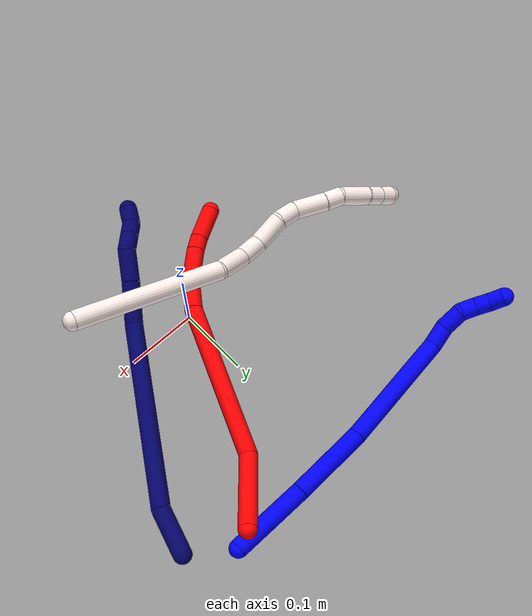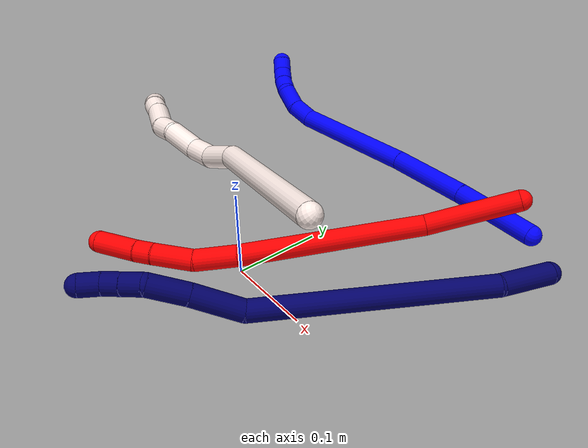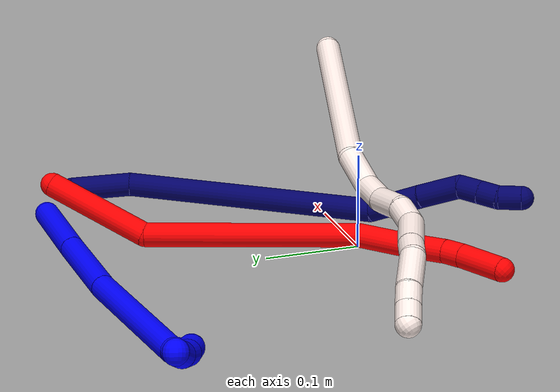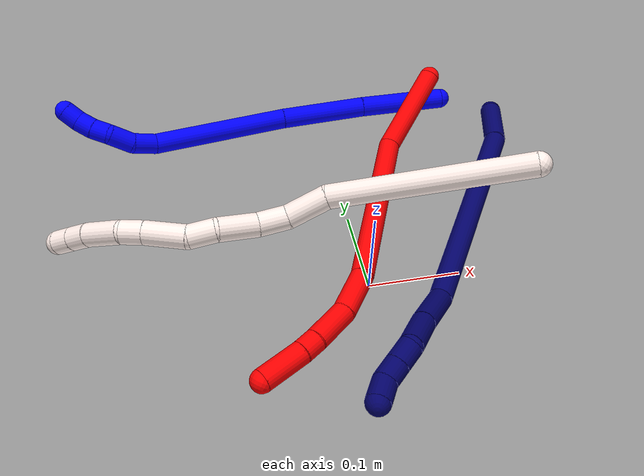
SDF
<sdf version="1.7">
 <world name="default">
  <model name="photoneo_s_sensor">
   <static>1</static>
   <pose>0 0 2 1.57079 1.57079 3.14159</pose>
   <link name="link">
    <inertial><mass>0.1</mass></inertial>
    <sensor name="sensor" type="depth">
     <update_rate>30</update_rate>
     <camera>
      <horizontal_fov>1.22</horizontal_fov>
      <image><width>1920</width><height>1200</height><format>B8G8R8</format></image>
      <clip><near>0.1</near><far>4</far></clip>
      <depth_camera><output>points</output></depth_camera>
     </camera>
     <plugin name="camera_plugin" filename="libgazebo_ros_depth_camera.so">
      <baseline>0.2</baseline>
      <alwaysOn>1</alwaysOn>
      <updateRate>0.0</updateRate>
      <cameraName>camera_ir</cameraName>
      <imageTopicName>/camera/color/image_raw</imageTopicName>
      <cameraInfoTopicName>/camera/color/camera_info</cameraInfoTopicName>
      <depthImageTopicName>/camera/depth/image_raw</depthImageTopicName>
      <depthImageCameraInfoTopicName>/camera/depth/camera_info</depthImageCameraInfoTopicName>
      <pointCloudTopicName>/camera/depth/points</pointCloudTopicName>
      <frameName>fr_optical</frameName>
      <pointCloudCutoff>0.1</pointCloudCutoff>
      <pointCloudCutoffMax>2.0</pointCloudCutoffMax>
      <distortionK1>0</distortionK1>
      <distortionK2>0</distortionK2>
      <distortionK3>0</distortionK3>
      <distortionT1>0</distortionT1>
      <distortionT2>0</distortionT2>
      <CxPrime>0</CxPrime>
      <Cx>0</Cx>
      <Cy>0</Cy>
      <focalLength>0</focalLength>
      <hackBaseline>0</hackBaseline>
     </plugin>
    </sensor>
   </link>
  </model>
  <model name="bin">
   <static>1</static>
   <link name="bottom">
    <collision name="collision-bottom">
     <pose>0 0 -0.01 0 -0 0</pose>
     <geometry><box><size>0.8 0.6 0.02</size></box></geometry>
     <surface>
      <friction><ode><mu>100</mu><mu2>100</mu2></ode></friction>
      <contact><collide_bitmask>65535</collide_bitmask></contact>
     </surface>
    </collision>
   </link>
   <link name="west_wall">
    <collision name="collision-west_wall">
     <pose>-0.41 0 0.1 0 -0 0</pose>
     <geometry><box><size>0.02 0.6 0.2</size></box></geometry>
     <surface>
      <friction><ode><mu>100</mu><mu2>100</mu2></ode></friction>
      <contact><collide_bitmask>65535</collide_bitmask></contact>
     </surface>
    </collision>
   </link>
   <link name="east_wall">
    <collision name="collision-east_wall">
     <pose>0.41 0 0.1 0 -0 0</pose>
     <geometry><box><size>0.02 0.6 0.2</size></box></geometry>
     <surface>
      <friction><ode><mu>100</mu><mu2>100</mu2></ode></friction>
      <contact><collide_bitmask>65535</collide_bitmask></contact>
     </surface>
    </collision>
   </link>
   <link name="south_wall">
    <collision name="collision-south_wall">
     <pose>0 -0.31 0.1 0 -0 0</pose>
     <geometry><box><size>0.8 0.02 0.2</size></box></geometry>
     <surface>
      <friction><ode><mu>100</mu><mu2>100</mu2></ode></friction>
      <contact><collide_bitmask>65535</collide_bitmask></contact>
     </surface>
    </collision>
   </link>
   <link name="north_wall">
    <collision name="collision-north_wall">
     <pose>0 0.31 0.1 0 -0 0</pose>
     <geometry><box><size>0.8 0.02 0.2</size></box></geometry>
     <surface>
      <friction><ode><mu>100</mu><mu2>100</mu2></ode></friction>
      <contact><collide_bitmask>65535</collide_bitmask></contact>
     </surface>
    </collision>
   </link>
  </model>
  <model name="1">
   <static>0</static>
   <link name="1">
    <collision name="collision-cylinder-e_1_1_4">
     <pose>-0.044641 -0.022448 0.01834 0.885773 -0.994871 -0.504125</pose>
     <geometry><cylinder><radius>0.0125</radius><length>0.106454</length></cylinder></geometry>
     <surface>
      <friction><ode><mu>1.16</mu><mu2>1.16</mu2><slip1>0</slip1><slip2>0</slip2></ode></friction>
      <contact><ode><kp>1e+06</kp><kd>1</kd><max_vel>0</max_vel><min_depth>0.001</min_depth></ode></contact>
     </surface>
    </collision>
    <visual name="visual-cylinder-e_1_1_4">
     <pose>-0.044641 -0.022448 0.01834 0.885773 -0.994871 -0.504125</pose>
     <geometry><cylinder><radius>0.0125</radius><length>0.106454</length></cylinder></geometry>
     <material><ambient>0 0 1 1</ambient></material>
    </visual>
    <collision name="collision-cylinder-e_2_4_5">
     <pose>-0.133958 -0.065335 0.055694 0.821518 -1.01234 -0.4738</pose>
     <geometry><cylinder><radius>0.0125</radius><length>0.105361</length></cylinder></geometry>
     <surface>
      <friction><ode><mu>1.16</mu><mu2>1.16</mu2><slip1>0</slip1><slip2>0</slip2></ode></friction>
      <contact><ode><kp>1e+06</kp><kd>1</kd><max_vel>0</max_vel><min_depth>0.001</min_depth></ode></contact>
     </surface>
    </collision>
    <visual name="visual-cylinder-e_2_4_5">
     <pose>-0.133958 -0.065335 0.055694 0.821518 -1.01234 -0.4738</pose>
     <geometry><cylinder><radius>0.0125</radius><length>0.105361</length></cylinder></geometry>
     <material><ambient>0 0 1 1</ambient></material>
    </visual>
    <collision name="collision-cylinder-e_3_5_6">
     <pose>-0.252863 -0.111793 0.102845 0.746294 -1.09418 -0.468172</pose>
     <geometry><cylinder><radius>0.0125</radius><length>0.167076</length></cylinder></geometry>
     <surface>
      <friction><ode><mu>1.16</mu><mu2>1.16</mu2><slip1>0</slip1><slip2>0</slip2></ode></friction>
      <contact><ode><kp>1e+06</kp><kd>1</kd><max_vel>0</max_vel><min_depth>0.001</min_depth></ode></contact>
     </surface>
    </collision>
    <visual name="visual-cylinder-e_3_5_6">
     <pose>-0.252863 -0.111793 0.102845 0.746294 -1.09418 -0.468172</pose>
     <geometry><cylinder><radius>0.0125</radius><length>0.167076</length></cylinder></geometry>
     <material><ambient>0 0 1 1</ambient></material>
    </visual>
    <collision name="collision-cylinder-e_4_6_7">
     <pose>-0.341156 -0.142477 0.130909 1.58685 -1.25056 -1.26584</pose>
     <geometry><cylinder><radius>0.0125</radius><length>0.029636</length></cylinder></geometry>
     <surface>
      <friction><ode><mu>1.16</mu><mu2>1.16</mu2><slip1>0</slip1><slip2>0</slip2></ode></friction>
      <contact><ode><kp>1e+06</kp><kd>1</kd><max_vel>0</max_vel><min_depth>0.001</min_depth></ode></contact>
     </surface>
    </collision>
    <visual name="visual-cylinder-e_4_6_7">
     <pose>-0.341156 -0.142477 0.130909 1.58685 -1.25056 -1.26584</pose>
     <geometry><cylinder><radius>0.0125</radius><length>0.029636</length></cylinder></geometry>
     <material><ambient>0 0 1 1</ambient></material>
    </visual>
    <collision name="collision-cylinder-e_5_7_8">
     <pose>-0.367208 -0.155899 0.128322 1.8502 -0.920935 -1.16445</pose>
     <geometry><cylinder><radius>0.0125</radius><length>0.030114</length></cylinder></geometry>
     <surface>
      <friction><ode><mu>1.16</mu><mu2>1.16</mu2><slip1>0</slip1><slip2>0</slip2></ode></friction>
      <contact><ode><kp>1e+06</kp><kd>1</kd><max_vel>0</max_vel><min_depth>0.001</min_depth></ode></contact>
     </surface>
    </collision>
    <visual name="visual-cylinder-e_5_7_8">
     <pose>-0.367208 -0.155899 0.128322 1.8502 -0.920935 -1.16445</pose>
     <geometry><cylinder><radius>0.0125</radius><length>0.030114</length></cylinder></geometry>
     <material><ambient>0 0 1 1</ambient></material>
    </visual>
    <collision name="collision-cylinder-e_6_8_9">
     <pose>-0.385265 -0.172947 0.127696 1.34702 -0.619885 -0.500421</pose>
     <geometry><cylinder><radius>0.0125</radius><length>0.020893</length></cylinder></geometry>
     <surface>
      <friction><ode><mu>1.16</mu><mu2>1.16</mu2><slip1>0</slip1><slip2>0</slip2></ode></friction>
      <contact><ode><kp>1e+06</kp><kd>1</kd><max_vel>0</max_vel><min_depth>0.001</min_depth></ode></contact>
     </surface>
    </collision>
    <visual name="visual-cylinder-e_6_8_9">
     <pose>-0.385265 -0.172947 0.127696 1.34702 -0.619885 -0.500421</pose>
     <geometry><cylinder><radius>0.0125</radius><length>0.020893</length></cylinder></geometry>
     <material><ambient>0 0 1 1</ambient></material>
    </visual>
    <collision name="collision-cylinder-e_7_9_10">
     <pose>-0.396492 -0.190038 0.130012 1.52209 -0.529621 -0.505515</pose>
     <geometry><cylinder><radius>0.0125</radius><length>0.02042</length></cylinder></geometry>
     <surface>
      <friction><ode><mu>1.16</mu><mu2>1.16</mu2><slip1>0</slip1><slip2>0</slip2></ode></friction>
      <contact><ode><kp>1e+06</kp><kd>1</kd><max_vel>0</max_vel><min_depth>0.001</min_depth></ode></contact>
     </surface>
    </collision>
    <visual name="visual-cylinder-e_7_9_10">
     <pose>-0.396492 -0.190038 0.130012 1.52209 -0.529621 -0.505515</pose>
     <geometry><cylinder><radius>0.0125</radius><length>0.02042</length></cylinder></geometry>
     <material><ambient>0 0 1 1</ambient></material>
    </visual>
    <collision name="collision-cylinder-e_8_10_2">
     <pose>-0.406578 -0.207405 0.12877 1.76343 -0.514064 -0.617717</pose>
     <geometry><cylinder><radius>0.0125</radius><length>0.020047</length></cylinder></geometry>
     <surface>
      <friction><ode><mu>1.16</mu><mu2>1.16</mu2><slip1>0</slip1><slip2>0</slip2></ode></friction>
      <contact><ode><kp>1e+06</kp><kd>1</kd><max_vel>0</max_vel><min_depth>0.001</min_depth></ode></contact>
     </surface>
    </collision>
    <visual name="visual-cylinder-e_8_10_2">
     <pose>-0.406578 -0.207405 0.12877 1.76343 -0.514064 -0.617717</pose>
     <geometry><cylinder><radius>0.0125</radius><length>0.020047</length></cylinder></geometry>
     <material><ambient>0 0 1 1</ambient></material>
    </visual>
    <collision name="collision-sphere-2">
     <pose>-0.411507 -0.215972 0.127099 0 -0 0</pose>
     <geometry><sphere><radius>0.0125</radius></sphere></geometry>
     <surface>
      <friction><ode><mu>1.16</mu><mu2>1.16</mu2><slip1>0</slip1><slip2>0</slip2></ode></friction>
      <contact><ode><kp>1e+06</kp><kd>1</kd><max_vel>0</max_vel><min_depth>0.001</min_depth></ode></contact>
     </surface>
    </collision>
    <visual name="visual-sphere-2">
     <pose>-0.411507 -0.215972 0.127099 0 -0 0</pose>
     <geometry><sphere><radius>0.0125</radius></sphere></geometry>
     <material><ambient>0 0 1 1</ambient></material>
    </visual>
    <collision name="collision-sphere-10">
     <pose>-0.40165 -0.198839 0.130441 0 -0 0</pose>
     <geometry><sphere><radius>0.0125</radius></sphere></geometry>
     <surface>
      <friction><ode><mu>1.16</mu><mu2>1.16</mu2><slip1>0</slip1><slip2>0</slip2></ode></friction>
      <contact><ode><kp>1e+06</kp><kd>1</kd><max_vel>0</max_vel><min_depth>0.001</min_depth></ode></contact>
     </surface>
    </collision>
    <visual name="visual-sphere-10">
     <pose>-0.40165 -0.198839 0.130441 0 -0 0</pose>
     <geometry><sphere><radius>0.0125</radius></sphere></geometry>
     <material><ambient>0 0 1 1</ambient></material>
    </visual>
    <collision name="collision-sphere-9">
     <pose>-0.391334 -0.181238 0.129583 0 -0 0</pose>
     <geometry><sphere><radius>0.0125</radius></sphere></geometry>
     <surface>
      <friction><ode><mu>1.16</mu><mu2>1.16</mu2><slip1>0</slip1><slip2>0</slip2></ode></friction>
      <contact><ode><kp>1e+06</kp><kd>1</kd><max_vel>0</max_vel><min_depth>0.001</min_depth></ode></contact>
     </surface>
    </collision>
    <visual name="visual-sphere-9">
     <pose>-0.391334 -0.181238 0.129583 0 -0 0</pose>
     <geometry><sphere><radius>0.0125</radius></sphere></geometry>
     <material><ambient>0 0 1 1</ambient></material>
    </visual>
    <collision name="collision-sphere-4">
     <pose>-0.089282 -0.044897 0.036681 0 -0 0</pose>
     <geometry><sphere><radius>0.0125</radius></sphere></geometry>
     <surface>
      <friction><ode><mu>1.16</mu><mu2>1.16</mu2><slip1>0</slip1><slip2>0</slip2></ode></friction>
      <contact><ode><kp>1e+06</kp><kd>1</kd><max_vel>0</max_vel><min_depth>0.001</min_depth></ode></contact>
     </surface>
    </collision>
    <visual name="visual-sphere-4">
     <pose>-0.089282 -0.044897 0.036681 0 -0 0</pose>
     <geometry><sphere><radius>0.0125</radius></sphere></geometry>
     <material><ambient>0 0 1 1</ambient></material>
    </visual>
    <collision name="collision-sphere-1">
     <geometry><sphere><radius>0.0125</radius></sphere></geometry>
     <surface>
      <friction><ode><mu>1.16</mu><mu2>1.16</mu2><slip1>0</slip1><slip2>0</slip2></ode></friction>
      <contact><ode><kp>1e+06</kp><kd>1</kd><max_vel>0</max_vel><min_depth>0.001</min_depth></ode></contact>
     </surface>
    </collision>
    <visual name="visual-sphere-1">
     <geometry><sphere><radius>0.0125</radius></sphere></geometry>
     <material><ambient>0 0 1 1</ambient></material>
    </visual>
    <collision name="collision-sphere-8">
     <pose>-0.379196 -0.164656 0.125809 0 -0 0</pose>
     <geometry><sphere><radius>0.0125</radius></sphere></geometry>
     <surface>
      <friction><ode><mu>1.16</mu><mu2>1.16</mu2><slip1>0</slip1><slip2>0</slip2></ode></friction>
      <contact><ode><kp>1e+06</kp><kd>1</kd><max_vel>0</max_vel><min_depth>0.001</min_depth></ode></contact>
     </surface>
    </collision>
    <visual name="visual-sphere-8">
     <pose>-0.379196 -0.164656 0.125809 0 -0 0</pose>
     <geometry><sphere><radius>0.0125</radius></sphere></geometry>
     <material><ambient>0 0 1 1</ambient></material>
    </visual>
    <collision name="collision-sphere-5">
     <pose>-0.178635 -0.085773 0.074706 0 -0 0</pose>
     <geometry><sphere><radius>0.0125</radius></sphere></geometry>
     <surface>
      <friction><ode><mu>1.16</mu><mu2>1.16</mu2><slip1>0</slip1><slip2>0</slip2></ode></friction>
      <contact><ode><kp>1e+06</kp><kd>1</kd><max_vel>0</max_vel><min_depth>0.001</min_depth></ode></contact>
     </surface>
    </collision>
    <visual name="visual-sphere-5">
     <pose>-0.178635 -0.085773 0.074706 0 -0 0</pose>
     <geometry><sphere><radius>0.0125</radius></sphere></geometry>
     <material><ambient>0 0 1 1</ambient></material>
    </visual>
    <collision name="collision-sphere-6">
     <pose>-0.327091 -0.137813 0.130984 0 -0 0</pose>
     <geometry><sphere><radius>0.0125</radius></sphere></geometry>
     <surface>
      <friction><ode><mu>1.16</mu><mu2>1.16</mu2><slip1>0</slip1><slip2>0</slip2></ode></friction>
      <contact><ode><kp>1e+06</kp><kd>1</kd><max_vel>0</max_vel><min_depth>0.001</min_depth></ode></contact>
     </surface>
    </collision>
    <visual name="visual-sphere-6">
     <pose>-0.327091 -0.137813 0.130984 0 -0 0</pose>
     <geometry><sphere><radius>0.0125</radius></sphere></geometry>
     <material><ambient>0 0 1 1</ambient></material>
    </visual>
    <collision name="collision-sphere-7">
     <pose>-0.35522 -0.147141 0.130834 0 -0 0</pose>
     <geometry><sphere><radius>0.0125</radius></sphere></geometry>
     <surface>
      <friction><ode><mu>1.16</mu><mu2>1.16</mu2><slip1>0</slip1><slip2>0</slip2></ode></friction>
      <contact><ode><kp>1e+06</kp><kd>1</kd><max_vel>0</max_vel><min_depth>0.001</min_depth></ode></contact>
     </surface>
    </collision>
    <visual name="visual-sphere-7">
     <pose>-0.35522 -0.147141 0.130834 0 -0 0</pose>
     <geometry><sphere><radius>0.0125</radius></sphere></geometry>
     <material><ambient>0 0 1 1</ambient></material>
    </visual>
    <inertial>
     <pose>-0.213156 -0.097041 0.081303 0 -0 0</pose>
     <mass>0.5</mass>
     <inertia>
      <ixx>9.3e-05</ixx>
      <ixy>0</ixy>
      <ixz>0</ixz>
      <iyy>0.000398</iyy>
      <iyz>0</iyz>
      <izz>0.000757</izz>
     </inertia>
    </inertial>
   </link>
   <pose>0.167372 0.287567 0.011493 -2.86855 0.266804 0.527613</pose>
  </model>
  <model name="2">
   <static>0</static>
   <link name="2">
    <collision name="collision-cylinder-e_1_1_4">
     <pose>-0.013054 -0.012299 -0.053739 2.91661 -0.232515 -1.60399</pose>
     <geometry><cylinder><radius>0.0125</radius><length>0.113305</length></cylinder></geometry>
     <surface>
      <friction><ode><mu>1.16</mu><mu2>1.16</mu2><slip1>0</slip1><slip2>0</slip2></ode></friction>
      <contact><ode><kp>1e+06</kp><kd>1</kd><max_vel>0</max_vel><min_depth>0.001</min_depth></ode></contact>
     </surface>
    </collision>
    <visual name="visual-cylinder-e_1_1_4">
     <pose>-0.013054 -0.012299 -0.053739 2.91661 -0.232515 -1.60399</pose>
     <geometry><cylinder><radius>0.0125</radius><length>0.113305</length></cylinder></geometry>
     <material><ambient>1 0 0 1</ambient></material>
    </visual>
    <collision name="collision-cylinder-e_2_4_5">
     <pose>-0.048247 -0.097992 -0.187482 2.39925 -0.201154 -0.507403</pose>
     <geometry><cylinder><radius>0.0125</radius><length>0.221609</length></cylinder></geometry>
     <surface>
      <friction><ode><mu>1.16</mu><mu2>1.16</mu2><slip1>0</slip1><slip2>0</slip2></ode></friction>
      <contact><ode><kp>1e+06</kp><kd>1</kd><max_vel>0</max_vel><min_depth>0.001</min_depth></ode></contact>
     </surface>
    </collision>
    <visual name="visual-cylinder-e_2_4_5">
     <pose>-0.048247 -0.097992 -0.187482 2.39925 -0.201154 -0.507403</pose>
     <geometry><cylinder><radius>0.0125</radius><length>0.221609</length></cylinder></geometry>
     <material><ambient>1 0 0 1</ambient></material>
    </visual>
    <collision name="collision-cylinder-e_3_5_6">
     <pose>-0.078075 -0.182438 -0.287732 2.64197 -0.321769 -1.13303</pose>
     <geometry><cylinder><radius>0.0125</radius><length>0.048627</length></cylinder></geometry>
     <surface>
      <friction><ode><mu>1.16</mu><mu2>1.16</mu2><slip1>0</slip1><slip2>0</slip2></ode></friction>
      <contact><ode><kp>1e+06</kp><kd>1</kd><max_vel>0</max_vel><min_depth>0.001</min_depth></ode></contact>
     </surface>
    </collision>
    <visual name="visual-cylinder-e_3_5_6">
     <pose>-0.078075 -0.182438 -0.287732 2.64197 -0.321769 -1.13303</pose>
     <geometry><cylinder><radius>0.0125</radius><length>0.048627</length></cylinder></geometry>
     <material><ambient>1 0 0 1</ambient></material>
    </visual>
    <collision name="collision-cylinder-e_4_6_7">
     <pose>-0.098835 -0.202162 -0.325275 2.67677 -0.594118 -1.82523</pose>
     <geometry><cylinder><radius>0.0125</radius><length>0.046702</length></cylinder></geometry>
     <surface>
      <friction><ode><mu>1.16</mu><mu2>1.16</mu2><slip1>0</slip1><slip2>0</slip2></ode></friction>
      <contact><ode><kp>1e+06</kp><kd>1</kd><max_vel>0</max_vel><min_depth>0.001</min_depth></ode></contact>
     </surface>
    </collision>
    <visual name="visual-cylinder-e_4_6_7">
     <pose>-0.098835 -0.202162 -0.325275 2.67677 -0.594118 -1.82523</pose>
     <geometry><cylinder><radius>0.0125</radius><length>0.046702</length></cylinder></geometry>
     <material><ambient>1 0 0 1</ambient></material>
    </visual>
    <collision name="collision-cylinder-e_5_7_8">
     <pose>-0.117844 -0.213479 -0.350289 2.81158 -0.629156 -2.19555</pose>
     <geometry><cylinder><radius>0.0125</radius><length>0.020178</length></cylinder></geometry>
     <surface>
      <friction><ode><mu>1.16</mu><mu2>1.16</mu2><slip1>0</slip1><slip2>0</slip2></ode></friction>
      <contact><ode><kp>1e+06</kp><kd>1</kd><max_vel>0</max_vel><min_depth>0.001</min_depth></ode></contact>
     </surface>
    </collision>
    <visual name="visual-cylinder-e_5_7_8">
     <pose>-0.117844 -0.213479 -0.350289 2.81158 -0.629156 -2.19555</pose>
     <geometry><cylinder><radius>0.0125</radius><length>0.020178</length></cylinder></geometry>
     <material><ambient>1 0 0 1</ambient></material>
    </visual>
    <collision name="collision-cylinder-e_6_8_2">
     <pose>-0.139559 -0.220409 -0.376639 2.91553 -0.689923 -2.52961</pose>
     <geometry><cylinder><radius>0.0125</radius><length>0.049579</length></cylinder></geometry>
     <surface>
      <friction><ode><mu>1.16</mu><mu2>1.16</mu2><slip1>0</slip1><slip2>0</slip2></ode></friction>
      <contact><ode><kp>1e+06</kp><kd>1</kd><max_vel>0</max_vel><min_depth>0.001</min_depth></ode></contact>
     </surface>
    </collision>
    <visual name="visual-cylinder-e_6_8_2">
     <pose>-0.139559 -0.220409 -0.376639 2.91553 -0.689923 -2.52961</pose>
     <geometry><cylinder><radius>0.0125</radius><length>0.049579</length></cylinder></geometry>
     <material><ambient>1 0 0 1</ambient></material>
    </visual>
    <collision name="collision-sphere-2">
     <pose>-0.155337 -0.224694 -0.395273 0 -0 0</pose>
     <geometry><sphere><radius>0.0125</radius></sphere></geometry>
     <surface>
      <friction><ode><mu>1.16</mu><mu2>1.16</mu2><slip1>0</slip1><slip2>0</slip2></ode></friction>
      <contact><ode><kp>1e+06</kp><kd>1</kd><max_vel>0</max_vel><min_depth>0.001</min_depth></ode></contact>
     </surface>
    </collision>
    <visual name="visual-sphere-2">
     <pose>-0.155337 -0.224694 -0.395273 0 -0 0</pose>
     <geometry><sphere><radius>0.0125</radius></sphere></geometry>
     <material><ambient>1 0 0 1</ambient></material>
    </visual>
    <collision name="collision-sphere-4">
     <pose>-0.026108 -0.024598 -0.107477 0 -0 0</pose>
     <geometry><sphere><radius>0.0125</radius></sphere></geometry>
     <surface>
      <friction><ode><mu>1.16</mu><mu2>1.16</mu2><slip1>0</slip1><slip2>0</slip2></ode></friction>
      <contact><ode><kp>1e+06</kp><kd>1</kd><max_vel>0</max_vel><min_depth>0.001</min_depth></ode></contact>
     </surface>
    </collision>
    <visual name="visual-sphere-4">
     <pose>-0.026108 -0.024598 -0.107477 0 -0 0</pose>
     <geometry><sphere><radius>0.0125</radius></sphere></geometry>
     <material><ambient>1 0 0 1</ambient></material>
    </visual>
    <collision name="collision-sphere-1">
     <geometry><sphere><radius>0.0125</radius></sphere></geometry>
     <surface>
      <friction><ode><mu>1.16</mu><mu2>1.16</mu2><slip1>0</slip1><slip2>0</slip2></ode></friction>
      <contact><ode><kp>1e+06</kp><kd>1</kd><max_vel>0</max_vel><min_depth>0.001</min_depth></ode></contact>
     </surface>
    </collision>
    <visual name="visual-sphere-1">
     <geometry><sphere><radius>0.0125</radius></sphere></geometry>
     <material><ambient>1 0 0 1</ambient></material>
    </visual>
    <collision name="collision-sphere-8">
     <pose>-0.123781 -0.216123 -0.358006 0 -0 0</pose>
     <geometry><sphere><radius>0.0125</radius></sphere></geometry>
     <surface>
      <friction><ode><mu>1.16</mu><mu2>1.16</mu2><slip1>0</slip1><slip2>0</slip2></ode></friction>
      <contact><ode><kp>1e+06</kp><kd>1</kd><max_vel>0</max_vel><min_depth>0.001</min_depth></ode></contact>
     </surface>
    </collision>
    <visual name="visual-sphere-8">
     <pose>-0.123781 -0.216123 -0.358006 0 -0 0</pose>
     <geometry><sphere><radius>0.0125</radius></sphere></geometry>
     <material><ambient>1 0 0 1</ambient></material>
    </visual>
    <collision name="collision-sphere-5">
     <pose>-0.070386 -0.171387 -0.267486 0 -0 0</pose>
     <geometry><sphere><radius>0.0125</radius></sphere></geometry>
     <surface>
      <friction><ode><mu>1.16</mu><mu2>1.16</mu2><slip1>0</slip1><slip2>0</slip2></ode></friction>
      <contact><ode><kp>1e+06</kp><kd>1</kd><max_vel>0</max_vel><min_depth>0.001</min_depth></ode></contact>
     </surface>
    </collision>
    <visual name="visual-sphere-5">
     <pose>-0.070386 -0.171387 -0.267486 0 -0 0</pose>
     <geometry><sphere><radius>0.0125</radius></sphere></geometry>
     <material><ambient>1 0 0 1</ambient></material>
    </visual>
    <collision name="collision-sphere-6">
     <pose>-0.085764 -0.193488 -0.307978 0 -0 0</pose>
     <geometry><sphere><radius>0.0125</radius></sphere></geometry>
     <surface>
      <friction><ode><mu>1.16</mu><mu2>1.16</mu2><slip1>0</slip1><slip2>0</slip2></ode></friction>
      <contact><ode><kp>1e+06</kp><kd>1</kd><max_vel>0</max_vel><min_depth>0.001</min_depth></ode></contact>
     </surface>
    </collision>
    <visual name="visual-sphere-6">
     <pose>-0.085764 -0.193488 -0.307978 0 -0 0</pose>
     <geometry><sphere><radius>0.0125</radius></sphere></geometry>
     <material><ambient>1 0 0 1</ambient></material>
    </visual>
    <collision name="collision-sphere-7">
     <pose>-0.111907 -0.210836 -0.342571 0 -0 0</pose>
     <geometry><sphere><radius>0.0125</radius></sphere></geometry>
     <surface>
      <friction><ode><mu>1.16</mu><mu2>1.16</mu2><slip1>0</slip1><slip2>0</slip2></ode></friction>
      <contact><ode><kp>1e+06</kp><kd>1</kd><max_vel>0</max_vel><min_depth>0.001</min_depth></ode></contact>
     </surface>
    </collision>
    <visual name="visual-sphere-7">
     <pose>-0.111907 -0.210836 -0.342571 0 -0 0</pose>
     <geometry><sphere><radius>0.0125</radius></sphere></geometry>
     <material><ambient>1 0 0 1</ambient></material>
    </visual>
    <inertial>
     <pose>-0.059761 -0.113315 -0.205121 0 -0 0</pose>
     <mass>0.5</mass>
     <inertia>
      <ixx>0.000179</ixx>
      <ixy>0</ixy>
      <ixz>0</ixz>
      <iyy>-0.001105</iyy>
      <iyz>0</iyz>
      <izz>0.000844</izz>
     </inertia>
    </inertial>
   </link>
   <pose>0.148041 0.285258 0.050885 -0.720424 0.582074 -0.165413</pose>
  </model>
  <model name="7">
   <static>0</static>
   <link name="7">
    <collision name="collision-cylinder-e_1_1_4">
     <pose>-0.004715 -0.007767 -0.030377 2.89127 -0.149272 -1.07245</pose>
     <geometry><cylinder><radius>0.0125</radius><length>0.063413</length></cylinder></geometry>
     <surface>
      <friction><ode><mu>1.16</mu><mu2>1.16</mu2><slip1>0</slip1><slip2>0</slip2></ode></friction>
      <contact><ode><kp>1e+06</kp><kd>1</kd><max_vel>0</max_vel><min_depth>0.001</min_depth></ode></contact>
     </surface>
    </collision>
    <visual name="visual-cylinder-e_1_1_4">
     <pose>-0.004715 -0.007767 -0.030377 2.89127 -0.149272 -1.07245</pose>
     <geometry><cylinder><radius>0.0125</radius><length>0.063413</length></cylinder></geometry>
     <material><ambient>0.003922 0 0.403922 1</ambient></material>
    </visual>
    <collision name="collision-cylinder-e_2_4_5">
     <pose>0.001595 -0.071757 -0.180108 2.70136 0.083376 0.36863</pose>
     <geometry><cylinder><radius>0.0125</radius><length>0.264789</length></cylinder></geometry>
     <surface>
      <friction><ode><mu>1.16</mu><mu2>1.16</mu2><slip1>0</slip1><slip2>0</slip2></ode></friction>
      <contact><ode><kp>1e+06</kp><kd>1</kd><max_vel>0</max_vel><min_depth>0.001</min_depth></ode></contact>
     </surface>
    </collision>
    <visual name="visual-cylinder-e_2_4_5">
     <pose>0.001595 -0.071757 -0.180108 2.70136 0.083376 0.36863</pose>
     <geometry><cylinder><radius>0.0125</radius><length>0.264789</length></cylinder></geometry>
     <material><ambient>0.003922 0 0.403922 1</ambient></material>
    </visual>
    <collision name="collision-cylinder-e_3_5_6">
     <pose>0.021712 -0.129827 -0.327306 3.07538 0.314949 2.73035</pose>
     <geometry><cylinder><radius>0.0125</radius><length>0.058695</length></cylinder></geometry>
     <surface>
      <friction><ode><mu>1.16</mu><mu2>1.16</mu2><slip1>0</slip1><slip2>0</slip2></ode></friction>
      <contact><ode><kp>1e+06</kp><kd>1</kd><max_vel>0</max_vel><min_depth>0.001</min_depth></ode></contact>
     </surface>
    </collision>
    <visual name="visual-cylinder-e_3_5_6">
     <pose>0.021712 -0.129827 -0.327306 3.07538 0.314949 2.73035</pose>
     <geometry><cylinder><radius>0.0125</radius><length>0.058695</length></cylinder></geometry>
     <material><ambient>0.003922 0 0.403922 1</ambient></material>
    </visual>
    <collision name="collision-cylinder-e_4_6_7">
     <pose>0.036332 -0.1336 -0.376619 3.05211 0.251074 2.4598</pose>
     <geometry><cylinder><radius>0.0125</radius><length>0.044508</length></cylinder></geometry>
     <surface>
      <friction><ode><mu>1.16</mu><mu2>1.16</mu2><slip1>0</slip1><slip2>0</slip2></ode></friction>
      <contact><ode><kp>1e+06</kp><kd>1</kd><max_vel>0</max_vel><min_depth>0.001</min_depth></ode></contact>
     </surface>
    </collision>
    <visual name="visual-cylinder-e_4_6_7">
     <pose>0.036332 -0.1336 -0.376619 3.05211 0.251074 2.4598</pose>
     <geometry><cylinder><radius>0.0125</radius><length>0.044508</length></cylinder></geometry>
     <material><ambient>0.003922 0 0.403922 1</ambient></material>
    </visual>
    <collision name="collision-cylinder-e_5_7_8">
     <pose>0.045338 -0.141867 -0.40731 2.53923 0.301322 0.909164</pose>
     <geometry><cylinder><radius>0.0125</radius><length>0.023437</length></cylinder></geometry>
     <surface>
      <friction><ode><mu>1.16</mu><mu2>1.16</mu2><slip1>0</slip1><slip2>0</slip2></ode></friction>
      <contact><ode><kp>1e+06</kp><kd>1</kd><max_vel>0</max_vel><min_depth>0.001</min_depth></ode></contact>
     </surface>
    </collision>
    <visual name="visual-cylinder-e_5_7_8">
     <pose>0.045338 -0.141867 -0.40731 2.53923 0.301322 0.909164</pose>
     <geometry><cylinder><radius>0.0125</radius><length>0.023437</length></cylinder></geometry>
     <material><ambient>0.003922 0 0.403922 1</ambient></material>
    </visual>
    <collision name="collision-cylinder-e_6_8_9">
     <pose>0.051925 -0.153981 -0.42486 2.53542 0.297623 0.894074</pose>
     <geometry><cylinder><radius>0.0125</radius><length>0.0212</length></cylinder></geometry>
     <surface>
      <friction><ode><mu>1.16</mu><mu2>1.16</mu2><slip1>0</slip1><slip2>0</slip2></ode></friction>
      <contact><ode><kp>1e+06</kp><kd>1</kd><max_vel>0</max_vel><min_depth>0.001</min_depth></ode></contact>
     </surface>
    </collision>
    <visual name="visual-cylinder-e_6_8_9">
     <pose>0.051925 -0.153981 -0.42486 2.53542 0.297623 0.894074</pose>
     <geometry><cylinder><radius>0.0125</radius><length>0.0212</length></cylinder></geometry>
     <material><ambient>0.003922 0 0.403922 1</ambient></material>
    </visual>
    <collision name="collision-cylinder-e_7_9_2">
     <pose>0.055795 -0.163878 -0.444409 2.78943 0.063603 0.353851</pose>
     <geometry><cylinder><radius>0.0125</radius><length>0.023958</length></cylinder></geometry>
     <surface>
      <friction><ode><mu>1.16</mu><mu2>1.16</mu2><slip1>0</slip1><slip2>0</slip2></ode></friction>
      <contact><ode><kp>1e+06</kp><kd>1</kd><max_vel>0</max_vel><min_depth>0.001</min_depth></ode></contact>
     </surface>
    </collision>
    <visual name="visual-cylinder-e_7_9_2">
     <pose>0.055795 -0.163878 -0.444409 2.78943 0.063603 0.353851</pose>
     <geometry><cylinder><radius>0.0125</radius><length>0.023958</length></cylinder></geometry>
     <material><ambient>0.003922 0 0.403922 1</ambient></material>
    </visual>
    <collision name="collision-sphere-2">
     <pose>0.056556 -0.168001 -0.45563 0 -0 0</pose>
     <geometry><sphere><radius>0.0125</radius></sphere></geometry>
     <surface>
      <friction><ode><mu>1.16</mu><mu2>1.16</mu2><slip1>0</slip1><slip2>0</slip2></ode></friction>
      <contact><ode><kp>1e+06</kp><kd>1</kd><max_vel>0</max_vel><min_depth>0.001</min_depth></ode></contact>
     </surface>
    </collision>
    <visual name="visual-sphere-2">
     <pose>0.056556 -0.168001 -0.45563 0 -0 0</pose>
     <geometry><sphere><radius>0.0125</radius></sphere></geometry>
     <material><ambient>0.003922 0 0.403922 1</ambient></material>
    </visual>
    <collision name="collision-sphere-9">
     <pose>0.055033 -0.159754 -0.433188 0 -0 0</pose>
     <geometry><sphere><radius>0.0125</radius></sphere></geometry>
     <surface>
      <friction><ode><mu>1.16</mu><mu2>1.16</mu2><slip1>0</slip1><slip2>0</slip2></ode></friction>
      <contact><ode><kp>1e+06</kp><kd>1</kd><max_vel>0</max_vel><min_depth>0.001</min_depth></ode></contact>
     </surface>
    </collision>
    <visual name="visual-sphere-9">
     <pose>0.055033 -0.159754 -0.433188 0 -0 0</pose>
     <geometry><sphere><radius>0.0125</radius></sphere></geometry>
     <material><ambient>0.003922 0 0.403922 1</ambient></material>
    </visual>
    <collision name="collision-sphere-4">
     <pose>-0.009431 -0.015534 -0.060753 0 -0 0</pose>
     <geometry><sphere><radius>0.0125</radius></sphere></geometry>
     <surface>
      <friction><ode><mu>1.16</mu><mu2>1.16</mu2><slip1>0</slip1><slip2>0</slip2></ode></friction>
      <contact><ode><kp>1e+06</kp><kd>1</kd><max_vel>0</max_vel><min_depth>0.001</min_depth></ode></contact>
     </surface>
    </collision>
    <visual name="visual-sphere-4">
     <pose>-0.009431 -0.015534 -0.060753 0 -0 0</pose>
     <geometry><sphere><radius>0.0125</radius></sphere></geometry>
     <material><ambient>0.003922 0 0.403922 1</ambient></material>
    </visual>
    <collision name="collision-sphere-1">
     <geometry><sphere><radius>0.0125</radius></sphere></geometry>
     <surface>
      <friction><ode><mu>1.16</mu><mu2>1.16</mu2><slip1>0</slip1><slip2>0</slip2></ode></friction>
      <contact><ode><kp>1e+06</kp><kd>1</kd><max_vel>0</max_vel><min_depth>0.001</min_depth></ode></contact>
     </surface>
    </collision>
    <visual name="visual-sphere-1">
     <geometry><sphere><radius>0.0125</radius></sphere></geometry>
     <material><ambient>0.003922 0 0.403922 1</ambient></material>
    </visual>
    <collision name="collision-sphere-8">
     <pose>0.048816 -0.148207 -0.416531 0 -0 0</pose>
     <geometry><sphere><radius>0.0125</radius></sphere></geometry>
     <surface>
      <friction><ode><mu>1.16</mu><mu2>1.16</mu2><slip1>0</slip1><slip2>0</slip2></ode></friction>
      <contact><ode><kp>1e+06</kp><kd>1</kd><max_vel>0</max_vel><min_depth>0.001</min_depth></ode></contact>
     </surface>
    </collision>
    <visual name="visual-sphere-8">
     <pose>0.048816 -0.148207 -0.416531 0 -0 0</pose>
     <geometry><sphere><radius>0.0125</radius></sphere></geometry>
     <material><ambient>0.003922 0 0.403922 1</ambient></material>
    </visual>
    <collision name="collision-sphere-5">
     <pose>0.012621 -0.127981 -0.299463 0 -0 0</pose>
     <geometry><sphere><radius>0.0125</radius></sphere></geometry>
     <surface>
      <friction><ode><mu>1.16</mu><mu2>1.16</mu2><slip1>0</slip1><slip2>0</slip2></ode></friction>
      <contact><ode><kp>1e+06</kp><kd>1</kd><max_vel>0</max_vel><min_depth>0.001</min_depth></ode></contact>
     </surface>
    </collision>
    <visual name="visual-sphere-5">
     <pose>0.012621 -0.127981 -0.299463 0 -0 0</pose>
     <geometry><sphere><radius>0.0125</radius></sphere></geometry>
     <material><ambient>0.003922 0 0.403922 1</ambient></material>
    </visual>
    <collision name="collision-sphere-6">
     <pose>0.030803 -0.131674 -0.355149 0 -0 0</pose>
     <geometry><sphere><radius>0.0125</radius></sphere></geometry>
     <surface>
      <friction><ode><mu>1.16</mu><mu2>1.16</mu2><slip1>0</slip1><slip2>0</slip2></ode></friction>
      <contact><ode><kp>1e+06</kp><kd>1</kd><max_vel>0</max_vel><min_depth>0.001</min_depth></ode></contact>
     </surface>
    </collision>
    <visual name="visual-sphere-6">
     <pose>0.030803 -0.131674 -0.355149 0 -0 0</pose>
     <geometry><sphere><radius>0.0125</radius></sphere></geometry>
     <material><ambient>0.003922 0 0.403922 1</ambient></material>
    </visual>
    <collision name="collision-sphere-7">
     <pose>0.041861 -0.135526 -0.398089 0 -0 0</pose>
     <geometry><sphere><radius>0.0125</radius></sphere></geometry>
     <surface>
      <friction><ode><mu>1.16</mu><mu2>1.16</mu2><slip1>0</slip1><slip2>0</slip2></ode></friction>
      <contact><ode><kp>1e+06</kp><kd>1</kd><max_vel>0</max_vel><min_depth>0.001</min_depth></ode></contact>
     </surface>
    </collision>
    <visual name="visual-sphere-7">
     <pose>0.041861 -0.135526 -0.398089 0 -0 0</pose>
     <geometry><sphere><radius>0.0125</radius></sphere></geometry>
     <material><ambient>0.003922 0 0.403922 1</ambient></material>
    </visual>
    <inertial>
     <pose>0.01303 -0.08715 -0.229582 0 -0 0</pose>
     <mass>0.5</mass>
     <inertia>
      <ixx>0.001999</ixx>
      <ixy>0</ixy>
      <ixz>0</ixz>
      <iyy>-0.000741</iyy>
      <iyz>0</iyz>
      <izz>0.000501</izz>
     </inertia>
    </inertial>
   </link>
   <pose>0.223517 0.246159 0.014041 1.95257 -0.347425 2.67986</pose>
  </model>
  <model name="11">
   <static>0</static>
   <link name="11">
    <collision name="collision-cylinder-e_1_1_4">
     <pose>-0.059035 0.042536 0.070565 -0.542467 -0.621711 0.178209</pose>
     <geometry><cylinder><radius>0.0125</radius><length>0.20272</length></cylinder></geometry>
     <surface>
      <friction><ode><mu>1.16</mu><mu2>1.16</mu2><slip1>0</slip1><slip2>0</slip2></ode></friction>
      <contact><ode><kp>1e+06</kp><kd>1</kd><max_vel>0</max_vel><min_depth>0.001</min_depth></ode></contact>
     </surface>
    </collision>
    <visual name="visual-cylinder-e_1_1_4">
     <pose>-0.059035 0.042536 0.070565 -0.542467 -0.621711 0.178209</pose>
     <geometry><cylinder><radius>0.0125</radius><length>0.20272</length></cylinder></geometry>
     <material><ambient>1 0.933333 0.909804 1</ambient></material>
    </visual>
    <collision name="collision-cylinder-e_2_4_5">
     <pose>-0.124937 0.092701 0.160446 -0.376179 -0.319368 0.061291</pose>
     <geometry><cylinder><radius>0.0125</radius><length>0.043749</length></cylinder></geometry>
     <surface>
      <friction><ode><mu>1.16</mu><mu2>1.16</mu2><slip1>0</slip1><slip2>0</slip2></ode></friction>
      <contact><ode><kp>1e+06</kp><kd>1</kd><max_vel>0</max_vel><min_depth>0.001</min_depth></ode></contact>
     </surface>
    </collision>
    <visual name="visual-cylinder-e_2_4_5">
     <pose>-0.124937 0.092701 0.160446 -0.376179 -0.319368 0.061291</pose>
     <geometry><cylinder><radius>0.0125</radius><length>0.043749</length></cylinder></geometry>
     <material><ambient>1 0.933333 0.909804 1</ambient></material>
    </visual>
    <collision name="collision-cylinder-e_3_5_6">
     <pose>-0.136717 0.109765 0.190943 -0.700879 -0.323925 0.119308</pose>
     <geometry><cylinder><radius>0.0125</radius><length>0.030864</length></cylinder></geometry>
     <surface>
      <friction><ode><mu>1.16</mu><mu2>1.16</mu2><slip1>0</slip1><slip2>0</slip2></ode></friction>
      <contact><ode><kp>1e+06</kp><kd>1</kd><max_vel>0</max_vel><min_depth>0.001</min_depth></ode></contact>
     </surface>
    </collision>
    <visual name="visual-cylinder-e_3_5_6">
     <pose>-0.136717 0.109765 0.190943 -0.700879 -0.323925 0.119308</pose>
     <geometry><cylinder><radius>0.0125</radius><length>0.030864</length></cylinder></geometry>
     <material><ambient>1 0.933333 0.909804 1</ambient></material>
    </visual>
    <collision name="collision-cylinder-e_4_6_7">
     <pose>-0.146592 0.135509 0.213985 -0.942016 -0.241305 0.123324</pose>
     <geometry><cylinder><radius>0.0125</radius><length>0.041535</length></cylinder></geometry>
     <surface>
      <friction><ode><mu>1.16</mu><mu2>1.16</mu2><slip1>0</slip1><slip2>0</slip2></ode></friction>
      <contact><ode><kp>1e+06</kp><kd>1</kd><max_vel>0</max_vel><min_depth>0.001</min_depth></ode></contact>
     </surface>
    </collision>
    <visual name="visual-cylinder-e_4_6_7">
     <pose>-0.146592 0.135509 0.213985 -0.942016 -0.241305 0.123324</pose>
     <geometry><cylinder><radius>0.0125</radius><length>0.041535</length></cylinder></geometry>
     <material><ambient>1 0.933333 0.909804 1</ambient></material>
    </visual>
    <collision name="collision-cylinder-e_5_7_8">
     <pose>-0.157304 0.159509 0.236477 -0.62631 -0.412986 0.135455</pose>
     <geometry><cylinder><radius>0.0125</radius><length>0.02865</length></cylinder></geometry>
     <surface>
      <friction><ode><mu>1.16</mu><mu2>1.16</mu2><slip1>0</slip1><slip2>0</slip2></ode></friction>
      <contact><ode><kp>1e+06</kp><kd>1</kd><max_vel>0</max_vel><min_depth>0.001</min_depth></ode></contact>
     </surface>
    </collision>
    <visual name="visual-cylinder-e_5_7_8">
     <pose>-0.157304 0.159509 0.236477 -0.62631 -0.412986 0.135455</pose>
     <geometry><cylinder><radius>0.0125</radius><length>0.02865</length></cylinder></geometry>
     <material><ambient>1 0.933333 0.909804 1</ambient></material>
    </visual>
    <collision name="collision-cylinder-e_6_8_9">
     <pose>-0.178721 0.178715 0.258639 -0.784629 -0.765728 0.330241</pose>
     <geometry><cylinder><radius>0.0125</radius><length>0.045213</length></cylinder></geometry>
     <surface>
      <friction><ode><mu>1.16</mu><mu2>1.16</mu2><slip1>0</slip1><slip2>0</slip2></ode></friction>
      <contact><ode><kp>1e+06</kp><kd>1</kd><max_vel>0</max_vel><min_depth>0.001</min_depth></ode></contact>
     </surface>
    </collision>
    <visual name="visual-cylinder-e_6_8_9">
     <pose>-0.178721 0.178715 0.258639 -0.784629 -0.765728 0.330241</pose>
     <geometry><cylinder><radius>0.0125</radius><length>0.045213</length></cylinder></geometry>
     <material><ambient>1 0.933333 0.909804 1</ambient></material>
    </visual>
    <collision name="collision-cylinder-e_7_9_10">
     <pose>-0.201915 0.196484 0.276855 -0.752296 -0.688101 0.281157</pose>
     <geometry><cylinder><radius>0.0125</radius><length>0.0237</length></cylinder></geometry>
     <surface>
      <friction><ode><mu>1.16</mu><mu2>1.16</mu2><slip1>0</slip1><slip2>0</slip2></ode></friction>
      <contact><ode><kp>1e+06</kp><kd>1</kd><max_vel>0</max_vel><min_depth>0.001</min_depth></ode></contact>
     </surface>
    </collision>
    <visual name="visual-cylinder-e_7_9_10">
     <pose>-0.201915 0.196484 0.276855 -0.752296 -0.688101 0.281157</pose>
     <geometry><cylinder><radius>0.0125</radius><length>0.0237</length></cylinder></geometry>
     <material><ambient>1 0.933333 0.909804 1</ambient></material>
    </visual>
    <collision name="collision-cylinder-e_8_10_11">
     <pose>-0.224894 0.207519 0.296947 -0.342493 -0.826412 0.151361</pose>
     <geometry><cylinder><radius>0.0125</radius><length>0.042022</length></cylinder></geometry>
     <surface>
      <friction><ode><mu>1.16</mu><mu2>1.16</mu2><slip1>0</slip1><slip2>0</slip2></ode></friction>
      <contact><ode><kp>1e+06</kp><kd>1</kd><max_vel>0</max_vel><min_depth>0.001</min_depth></ode></contact>
     </surface>
    </collision>
    <visual name="visual-cylinder-e_8_10_11">
     <pose>-0.224894 0.207519 0.296947 -0.342493 -0.826412 0.151361</pose>
     <geometry><cylinder><radius>0.0125</radius><length>0.042022</length></cylinder></geometry>
     <material><ambient>1 0.933333 0.909804 1</ambient></material>
    </visual>
    <collision name="collision-cylinder-e_9_11_12">
     <pose>-0.247489 0.213953 0.318073 -0.210991 -0.735463 0.081543</pose>
     <geometry><cylinder><radius>0.0125</radius><length>0.021289</length></cylinder></geometry>
     <surface>
      <friction><ode><mu>1.16</mu><mu2>1.16</mu2><slip1>0</slip1><slip2>0</slip2></ode></friction>
      <contact><ode><kp>1e+06</kp><kd>1</kd><max_vel>0</max_vel><min_depth>0.001</min_depth></ode></contact>
     </surface>
    </collision>
    <visual name="visual-cylinder-e_9_11_12">
     <pose>-0.247489 0.213953 0.318073 -0.210991 -0.735463 0.081543</pose>
     <geometry><cylinder><radius>0.0125</radius><length>0.021289</length></cylinder></geometry>
     <material><ambient>1 0.933333 0.909804 1</ambient></material>
    </visual>
    <collision name="collision-cylinder-e_10_12_2">
     <pose>-0.261268 0.21736 0.333239 -0.231284 -0.714491 0.086662</pose>
     <geometry><cylinder><radius>0.0125</radius><length>0.020257</length></cylinder></geometry>
     <surface>
      <friction><ode><mu>1.16</mu><mu2>1.16</mu2><slip1>0</slip1><slip2>0</slip2></ode></friction>
      <contact><ode><kp>1e+06</kp><kd>1</kd><max_vel>0</max_vel><min_depth>0.001</min_depth></ode></contact>
     </surface>
    </collision>
    <visual name="visual-cylinder-e_10_12_2">
     <pose>-0.261268 0.21736 0.333239 -0.231284 -0.714491 0.086662</pose>
     <geometry><cylinder><radius>0.0125</radius><length>0.020257</length></cylinder></geometry>
     <material><ambient>1 0.933333 0.909804 1</ambient></material>
    </visual>
    <collision name="collision-sphere-2">
     <pose>-0.267904 0.219114 0.340687 0 -0 0</pose>
     <geometry><sphere><radius>0.0125</radius></sphere></geometry>
     <surface>
      <friction><ode><mu>1.16</mu><mu2>1.16</mu2><slip1>0</slip1><slip2>0</slip2></ode></friction>
      <contact><ode><kp>1e+06</kp><kd>1</kd><max_vel>0</max_vel><min_depth>0.001</min_depth></ode></contact>
     </surface>
    </collision>
    <visual name="visual-sphere-2">
     <pose>-0.267904 0.219114 0.340687 0 -0 0</pose>
     <geometry><sphere><radius>0.0125</radius></sphere></geometry>
     <material><ambient>1 0.933333 0.909804 1</ambient></material>
    </visual>
    <collision name="collision-sphere-12">
     <pose>-0.254631 0.215606 0.325791 0 -0 0</pose>
     <geometry><sphere><radius>0.0125</radius></sphere></geometry>
     <surface>
      <friction><ode><mu>1.16</mu><mu2>1.16</mu2><slip1>0</slip1><slip2>0</slip2></ode></friction>
      <contact><ode><kp>1e+06</kp><kd>1</kd><max_vel>0</max_vel><min_depth>0.001</min_depth></ode></contact>
     </surface>
    </collision>
    <visual name="visual-sphere-12">
     <pose>-0.254631 0.215606 0.325791 0 -0 0</pose>
     <geometry><sphere><radius>0.0125</radius></sphere></geometry>
     <material><ambient>1 0.933333 0.909804 1</ambient></material>
    </visual>
    <collision name="collision-sphere-11">
     <pose>-0.240347 0.2123 0.310355 0 -0 0</pose>
     <geometry><sphere><radius>0.0125</radius></sphere></geometry>
     <surface>
      <friction><ode><mu>1.16</mu><mu2>1.16</mu2><slip1>0</slip1><slip2>0</slip2></ode></friction>
      <contact><ode><kp>1e+06</kp><kd>1</kd><max_vel>0</max_vel><min_depth>0.001</min_depth></ode></contact>
     </surface>
    </collision>
    <visual name="visual-sphere-11">
     <pose>-0.240347 0.2123 0.310355 0 -0 0</pose>
     <geometry><sphere><radius>0.0125</radius></sphere></geometry>
     <material><ambient>1 0.933333 0.909804 1</ambient></material>
    </visual>
    <collision name="collision-sphere-10">
     <pose>-0.20944 0.202739 0.283538 0 -0 0</pose>
     <geometry><sphere><radius>0.0125</radius></sphere></geometry>
     <surface>
      <friction><ode><mu>1.16</mu><mu2>1.16</mu2><slip1>0</slip1><slip2>0</slip2></ode></friction>
      <contact><ode><kp>1e+06</kp><kd>1</kd><max_vel>0</max_vel><min_depth>0.001</min_depth></ode></contact>
     </surface>
    </collision>
    <visual name="visual-sphere-10">
     <pose>-0.20944 0.202739 0.283538 0 -0 0</pose>
     <geometry><sphere><radius>0.0125</radius></sphere></geometry>
     <material><ambient>1 0.933333 0.909804 1</ambient></material>
    </visual>
    <collision name="collision-sphere-9">
     <pose>-0.194389 0.190229 0.270172 0 -0 0</pose>
     <geometry><sphere><radius>0.0125</radius></sphere></geometry>
     <surface>
      <friction><ode><mu>1.16</mu><mu2>1.16</mu2><slip1>0</slip1><slip2>0</slip2></ode></friction>
      <contact><ode><kp>1e+06</kp><kd>1</kd><max_vel>0</max_vel><min_depth>0.001</min_depth></ode></contact>
     </surface>
    </collision>
    <visual name="visual-sphere-9">
     <pose>-0.194389 0.190229 0.270172 0 -0 0</pose>
     <geometry><sphere><radius>0.0125</radius></sphere></geometry>
     <material><ambient>1 0.933333 0.909804 1</ambient></material>
    </visual>
    <collision name="collision-sphere-4">
     <pose>-0.11807 0.085072 0.14113 0 -0 0</pose>
     <geometry><sphere><radius>0.0125</radius></sphere></geometry>
     <surface>
      <friction><ode><mu>1.16</mu><mu2>1.16</mu2><slip1>0</slip1><slip2>0</slip2></ode></friction>
      <contact><ode><kp>1e+06</kp><kd>1</kd><max_vel>0</max_vel><min_depth>0.001</min_depth></ode></contact>
     </surface>
    </collision>
    <visual name="visual-sphere-4">
     <pose>-0.11807 0.085072 0.14113 0 -0 0</pose>
     <geometry><sphere><radius>0.0125</radius></sphere></geometry>
     <material><ambient>1 0.933333 0.909804 1</ambient></material>
    </visual>
    <collision name="collision-sphere-1">
     <geometry><sphere><radius>0.0125</radius></sphere></geometry>
     <surface>
      <friction><ode><mu>1.16</mu><mu2>1.16</mu2><slip1>0</slip1><slip2>0</slip2></ode></friction>
      <contact><ode><kp>1e+06</kp><kd>1</kd><max_vel>0</max_vel><min_depth>0.001</min_depth></ode></contact>
     </surface>
    </collision>
    <visual name="visual-sphere-1">
     <geometry><sphere><radius>0.0125</radius></sphere></geometry>
     <material><ambient>1 0.933333 0.909804 1</ambient></material>
    </visual>
    <collision name="collision-sphere-8">
     <pose>-0.163053 0.1672 0.247107 0 -0 0</pose>
     <geometry><sphere><radius>0.0125</radius></sphere></geometry>
     <surface>
      <friction><ode><mu>1.16</mu><mu2>1.16</mu2><slip1>0</slip1><slip2>0</slip2></ode></friction>
      <contact><ode><kp>1e+06</kp><kd>1</kd><max_vel>0</max_vel><min_depth>0.001</min_depth></ode></contact>
     </surface>
    </collision>
    <visual name="visual-sphere-8">
     <pose>-0.163053 0.1672 0.247107 0 -0 0</pose>
     <geometry><sphere><radius>0.0125</radius></sphere></geometry>
     <material><ambient>1 0.933333 0.909804 1</ambient></material>
    </visual>
    <collision name="collision-sphere-5">
     <pose>-0.131805 0.100331 0.179762 0 -0 0</pose>
     <geometry><sphere><radius>0.0125</radius></sphere></geometry>
     <surface>
      <friction><ode><mu>1.16</mu><mu2>1.16</mu2><slip1>0</slip1><slip2>0</slip2></ode></friction>
      <contact><ode><kp>1e+06</kp><kd>1</kd><max_vel>0</max_vel><min_depth>0.001</min_depth></ode></contact>
     </surface>
    </collision>
    <visual name="visual-sphere-5">
     <pose>-0.131805 0.100331 0.179762 0 -0 0</pose>
     <geometry><sphere><radius>0.0125</radius></sphere></geometry>
     <material><ambient>1 0.933333 0.909804 1</ambient></material>
    </visual>
    <collision name="collision-sphere-6">
     <pose>-0.141629 0.1192 0.202125 0 -0 0</pose>
     <geometry><sphere><radius>0.0125</radius></sphere></geometry>
     <surface>
      <friction><ode><mu>1.16</mu><mu2>1.16</mu2><slip1>0</slip1><slip2>0</slip2></ode></friction>
      <contact><ode><kp>1e+06</kp><kd>1</kd><max_vel>0</max_vel><min_depth>0.001</min_depth></ode></contact>
     </surface>
    </collision>
    <visual name="visual-sphere-6">
     <pose>-0.141629 0.1192 0.202125 0 -0 0</pose>
     <geometry><sphere><radius>0.0125</radius></sphere></geometry>
     <material><ambient>1 0.933333 0.909804 1</ambient></material>
    </visual>
    <collision name="collision-sphere-7">
     <pose>-0.151555 0.151818 0.225846 0 -0 0</pose>
     <geometry><sphere><radius>0.0125</radius></sphere></geometry>
     <surface>
      <friction><ode><mu>1.16</mu><mu2>1.16</mu2><slip1>0</slip1><slip2>0</slip2></ode></friction>
      <contact><ode><kp>1e+06</kp><kd>1</kd><max_vel>0</max_vel><min_depth>0.001</min_depth></ode></contact>
     </surface>
    </collision>
    <visual name="visual-sphere-7">
     <pose>-0.151555 0.151818 0.225846 0 -0 0</pose>
     <geometry><sphere><radius>0.0125</radius></sphere></geometry>
     <material><ambient>1 0.933333 0.909804 1</ambient></material>
    </visual>
    <inertial>
     <pose>-0.130253 0.11336 0.174273 0 -0 0</pose>
     <mass>0.5</mass>
     <inertia>
      <ixx>0.000685</ixx>
      <ixy>0</ixy>
      <ixz>0</ixz>
      <iyy>0.000792</iyy>
      <iyz>0</iyz>
      <izz>0.000142</izz>
     </inertia>
    </inertial>
   </link>
   <pose>0.147252 -0.019568 0.168737 2.34406 -0.12362 -1.19229</pose>
  </model>
 </world>
</sdf>
